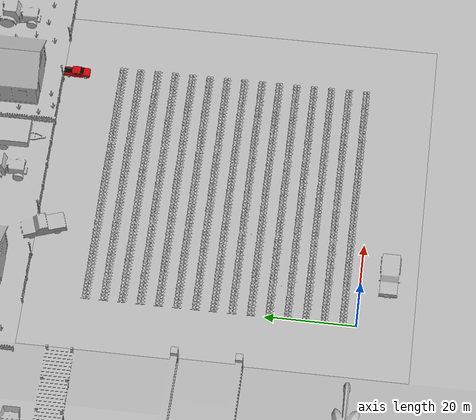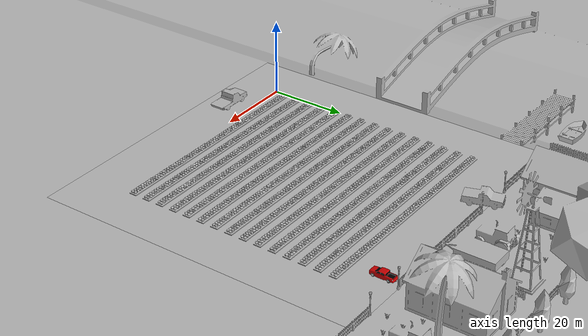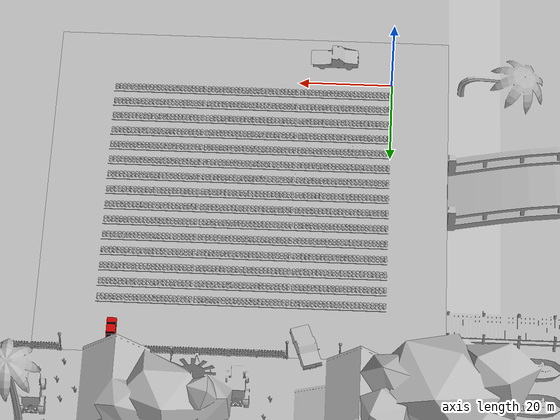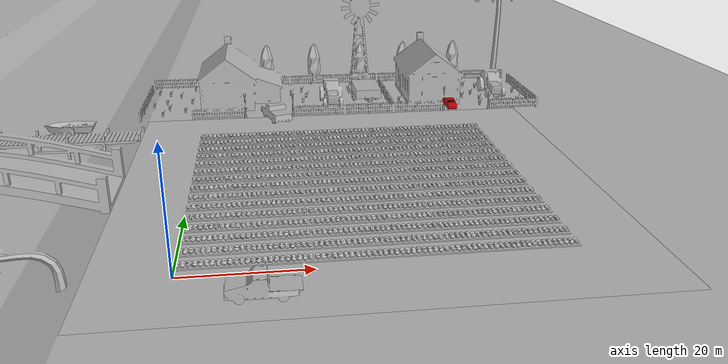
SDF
<sdf version="1.7">
  <world name="default">
    <scene>
      <shadows>false</shadows>
      <origin_visual>false</origin_visual>
      <grid>false</grid>
      <sky>
        <clouds>
          <speed>6</speed>
        </clouds>
      </sky>
    </scene>
    <include>
      <uri>model://sun</uri>
    </include>
    <include>
      <uri>model://empty_field</uri>
    </include>
    <include>
      <uri>model://scenery</uri>
      <name>scenery</name>
      <pose>0 0 0 0 0 0</pose>
    </include>
    <include>
      <uri>model://strawberry_field</uri>
      <name>field_0</name>
      <pose>0 0 0 0 0 0</pose>
    </include>
    <include>
      <uri>model://strawberry_field</uri>
      <name>field_1</name>
      <pose>0 20 0 0 0 0</pose>
    </include>
    <include>
      <uri>model://strawberry_field</uri>
      <name>field_2</name>
      <pose>0 40 0 0 0 0</pose>
    </include>
    <include>
      <uri>model://strawberry_field</uri>
      <name>field_3</name>
      <pose>20 0 0 0 0 0</pose>
    </include>
    <include>
      <uri>model://strawberry_field</uri>
      <name>field_4</name>
      <pose>20 20 0 0 0 0</pose>
    </include>
    <include>
      <uri>model://strawberry_field</uri>
      <name>field_5</name>
      <pose>20 40 0 0 0 0</pose>
    </include>
    <include>
      <uri>model://strawberry_field</uri>
      <name>field_6</name>
      <pose>40 0 0 0 0 0</pose>
    </include>
    <include>
      <uri>model://strawberry_field</uri>
      <name>field_7</name>
      <pose>40 20 0 0 0 0</pose>
    </include>
    <include>
      <uri>model://strawberry_field</uri>
      <name>field_8</name>
      <pose>40 40 0 0 0 0</pose>
    </include>
    <include>
      <uri>model://blue_truck</uri>
      <name>truck_1</name>
        <pose>12.3 -6.15 0 0 0 0</pose>
</include>
<include>
  <uri>model://red_truck</uri>
  <name>truck_2</name>
  <pose>55 66 0 0 0 0</pose>
</include>
<include>
  <uri>model://blue_box</uri>
  <name>box_1</name>
  <pose>20 25 0.052 0 0 -1.57</pose>
</include>
<include>
  <uri>model://red_box</uri>
  <name>box_2</name>
  <pose>5 29 0.052 0 0 -1.57</pose>
</include>
<include>
  <uri>model://red_box</uri>
  <name>box_3</name>
  <pose>15 49 0.052 0 0 -1.57</pose>
</include>
<include>
  <uri>model://blue_box</uri>
  <name>box_4</name>
  <pose>8 17 0.052 0 0 -1.57</pose>
</include>
<plugin name="ros_link_attacher_plugin" filename="libgazebo_ros_link_attacher.so"/>
</world>
</sdf>

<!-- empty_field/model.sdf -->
<sdf version="1.6">
    <model name="empty_field">
      <static>true</static>
      <link name="empty_field">
        <visual name="visual">
          <geometry>
            <mesh><uri>model://empty_field/meshes/empty_field.obj</uri></mesh>
          </geometry>
        </visual>
        <collision name="collision">
          <geometry>
            <mesh><uri>model://empty_field/meshes/empty_field.obj</uri></mesh>
          </geometry>
        </collision>
      </link>
    </model>
</sdf>

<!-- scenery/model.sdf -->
<sdf version="1.6">
    <model name="scenery">
      <static>true</static>
      <link name="scenery">
        <visual name="visual">
          <geometry>
            <mesh><uri>model://scenery/meshes/scenery.obj</uri></mesh>
          </geometry>
        </visual>
        <collision name="collision">
          <geometry>
            <mesh><uri>model://scenery/meshes/scenery.obj</uri></mesh>
          </geometry>
        </collision>
      </link>
    </model>
</sdf>

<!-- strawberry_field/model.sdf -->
<sdf version="1.6">
    <model name="strawberry_field">
      <static>true</static>
      <link name="strawberry_field">
        <visual name="visual">
          <geometry>
            <mesh><uri>model://strawberry_field/meshes/strawberry_field.obj</uri></mesh>
          </geometry>
        </visual>
      </link>
    </model>
</sdf>

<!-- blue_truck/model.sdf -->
<sdf version="1.6">
    <model name="blue_truck">
      <static>true</static>
      <link name="empty_truck">
        <visual name="visual">
          <geometry>
            <mesh><uri>./meshes/blue_truck.obj</uri></mesh>
          </geometry>
        </visual>
        <collision name="collision">
          <geometry>
            <mesh><uri>./meshes/blue_truck.obj</uri></mesh>
          </geometry>
        </collision>
      </link>
    </model>
</sdf>

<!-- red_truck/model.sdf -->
<sdf version="1.5">
  <model name="red_truck">
    <pose>0 0 0 0 0 0</pose>
    <static>true</static>
    <link name="body">
      <visual name="visual">
        <geometry>
          <mesh><uri>model://red_truck/media/redtruck.dae</uri></mesh>
        </geometry>
      </visual>
      <collision name="collision">
        <geometry>
          <mesh><uri>model://red_truck/media/redtruck.dae</uri></mesh>
        </geometry>
      </collision>
    </link>
  </model>
</sdf>

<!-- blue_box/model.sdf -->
<sdf version='1.6'>
  <model name='blue_box'>
    <link name='link'>
      <inertial>
        <mass>0.01</mass>
        <inertia>
          <ixx>0.166667</ixx>
          <ixy>0</ixy>
          <ixz>0</ixz>
          <iyy>0.166667</iyy>
          <iyz>0</iyz>
          <izz>0.166667</izz>
        </inertia>
        <pose frame=''>0 0 0 0 -0 0</pose>
      </inertial>
      <self_collide>0</self_collide>
      <enable_wind>0</enable_wind>
      <kinematic>0</kinematic>
      <pose frame=''>0 -0 0.035 0 -0 0</pose>
      <gravity>1</gravity>
      <visual name='visual'>
        <geometry>
          <box>
            <size>0.1 0.05 0.07</size>
          </box>
        </geometry>
        <material>
          <shader type='pixel'>
            <normal_map>__default__</normal_map>
          </shader>
          <ambient>0 0 1 1</ambient>
          <diffuse>0.7 0.7 0.7 1</diffuse>
          <specular>0.01 0.01 0.01 1</specular>
          <emissive>0 0 0 1</emissive>
        </material>
        <pose frame=''>0 0 0 0 -0 0</pose>
        <transparency>0</transparency>
        <cast_shadows>1</cast_shadows>
      </visual>
      <collision name='collision'>
        <laser_retro>0</laser_retro>
        <max_contacts>10</max_contacts>
        <pose frame=''>0 0 0 0 -0 0</pose>
        <geometry>
          <box>
            <size>0.1 0.05 0.07</size>
          </box>
        </geometry>
        <surface>
          <friction>
            <ode>
              <mu>1</mu>
              <mu2>1</mu2>
              <fdir1>0 0 0</fdir1>
              <slip1>0</slip1>
              <slip2>0</slip2>
            </ode>
            <torsional>
              <coefficient>1</coefficient>
              <patch_radius>0</patch_radius>
              <surface_radius>0</surface_radius>
              <use_patch_radius>1</use_patch_radius>
              <ode>
                <slip>0</slip>
              </ode>
            </torsional>
          </friction>
          <bounce>
            <restitution_coefficient>0</restitution_coefficient>
            <threshold>1e+06</threshold>
          </bounce>
          <contact>
            <collide_without_contact>0</collide_without_contact>
            <collide_without_contact_bitmask>1</collide_without_contact_bitmask>
            <collide_bitmask>1</collide_bitmask>
            <ode>
              <soft_cfm>0</soft_cfm>
              <soft_erp>0.2</soft_erp>
              <kp>1e+13</kp>
              <kd>1</kd>
              <max_vel>0.01</max_vel>
              <min_depth>0</min_depth>
            </ode>
            <bullet>
              <split_impulse>1</split_impulse>
              <split_impulse_penetration_threshold>-0.01</split_impulse_penetration_threshold>
              <soft_cfm>0</soft_cfm>
              <soft_erp>0.2</soft_erp>
              <kp>1e+13</kp>
              <kd>1</kd>
            </bullet>
          </contact>
        </surface>
      </collision>
    </link>
    <static>0</static>
    <allow_auto_disable>1</allow_auto_disable>
  </model>
</sdf>

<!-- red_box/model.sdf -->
<sdf version='1.6'>
  <model name='red_box'>
    <link name='link'>
      <inertial>
        <mass>0.01</mass>
        <inertia>
          <ixx>0</ixx>
          <ixy>0</ixy>
          <ixz>0</ixz>
          <iyy>0</iyy>
          <iyz>0</iyz>
          <izz>0</izz>
        </inertia>
        <pose frame=''>0 0 0 0 -0 0</pose>
      </inertial>
      <self_collide>0</self_collide>
      <enable_wind>0</enable_wind>
      <kinematic>0</kinematic>
      <pose frame=''>0 0 0 0 0 0</pose>
      <gravity>1</gravity>
      <visual name='visual'>
        <geometry>
          <box>
            <size>0.05 0.1 0.08</size>
          </box>
        </geometry>
        <material>
          <shader type='pixel'>
            <normal_map>__default__</normal_map>
          </shader>
          <ambient>1 0 0 1</ambient>
          <diffuse>0.7 0.7 0.7 1</diffuse>
          <specular>0.01 0.01 0.01 1</specular>
          <emissive>0 0 0 1</emissive>
        </material>
        <pose frame=''>0 0 0 0 -0 0</pose>
        <transparency>0</transparency>
        <cast_shadows>1</cast_shadows>
      </visual>
      <collision name='collision'>
        <laser_retro>0</laser_retro>
        <max_contacts>10</max_contacts>
        <pose frame=''>0 0 0 0 -0 0</pose>
        <geometry>
          <box>
            <size>0.05 0.1 0.08</size>
          </box>
        </geometry>
        <surface>
          <friction>
            <ode>
              <mu>1</mu>
              <mu2>1</mu2>
              <fdir1>0 0 0</fdir1>
              <slip1>0</slip1>
              <slip2>0</slip2>
            </ode>
            <torsional>
              <coefficient>1</coefficient>
              <patch_radius>0</patch_radius>
              <surface_radius>0</surface_radius>
              <use_patch_radius>1</use_patch_radius>
              <ode>
                <slip>0</slip>
              </ode>
            </torsional>
          </friction>
          <bounce>
            <restitution_coefficient>0</restitution_coefficient>
            <threshold>1e+06</threshold>
          </bounce>
          <contact>
            <collide_without_contact>0</collide_without_contact>
            <collide_without_contact_bitmask>1</collide_without_contact_bitmask>
            <collide_bitmask>1</collide_bitmask>
            <ode>
              <soft_cfm>0</soft_cfm>
              <soft_erp>0.2</soft_erp>
              <kp>1e+13</kp>
              <kd>1</kd>
              <max_vel>0.01</max_vel>
              <min_depth>0</min_depth>
            </ode>
            <bullet>
              <split_impulse>1</split_impulse>
              <split_impulse_penetration_threshold>-0.01</split_impulse_penetration_threshold>
              <soft_cfm>0</soft_cfm>
              <soft_erp>0.2</soft_erp>
              <kp>1e+13</kp>
              <kd>1</kd>
            </bullet>
          </contact>
        </surface>
      </collision>
    </link>
    <static>0</static>
    <allow_auto_disable>1</allow_auto_disable>
  </model>
</sdf>
